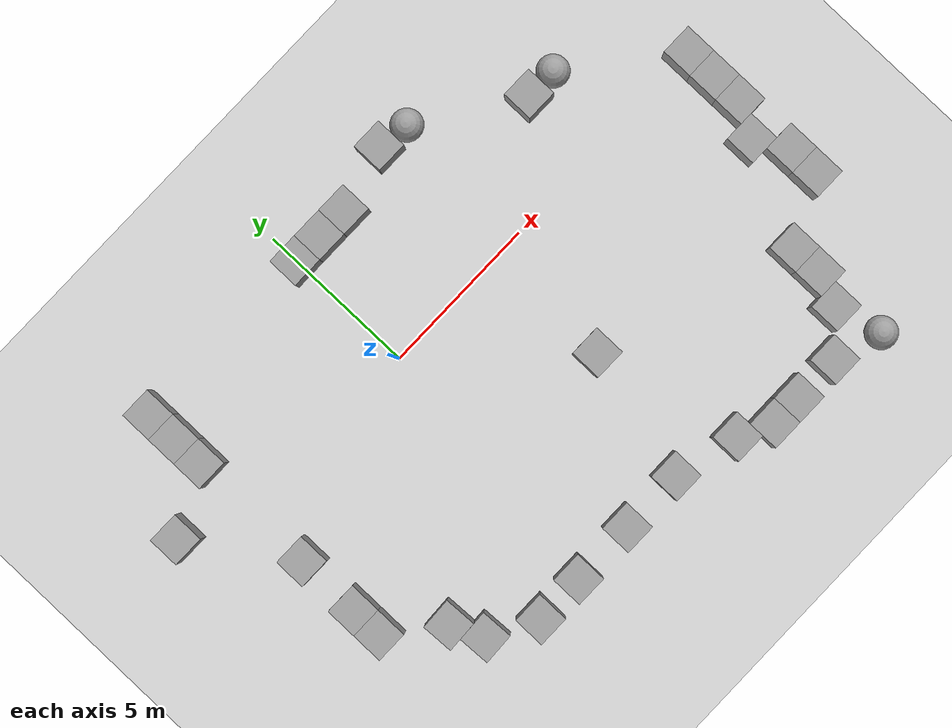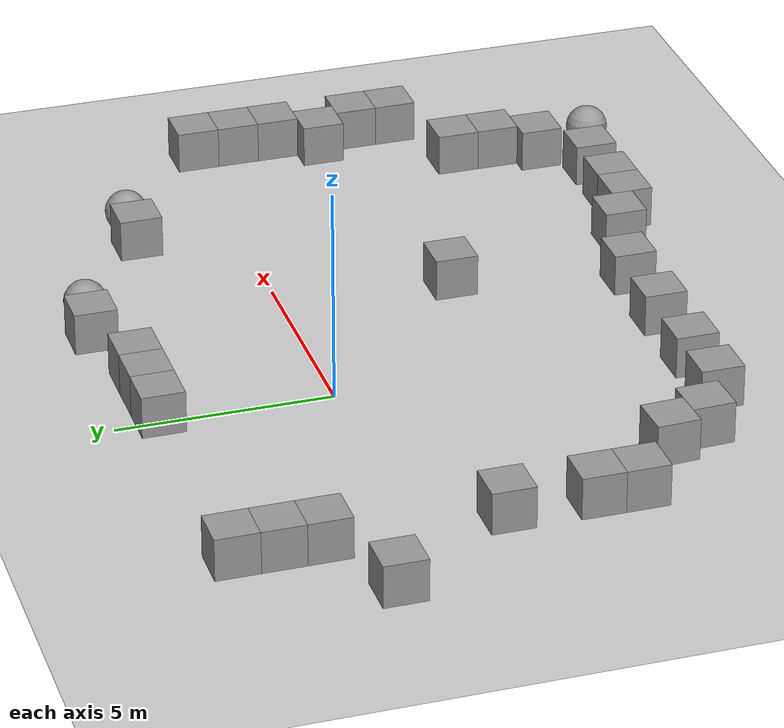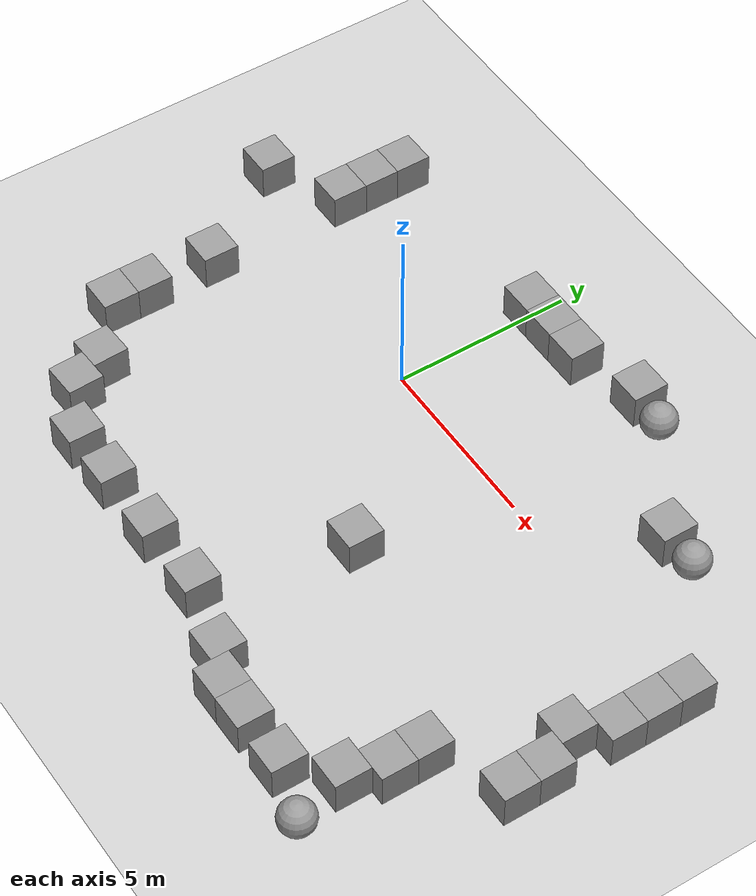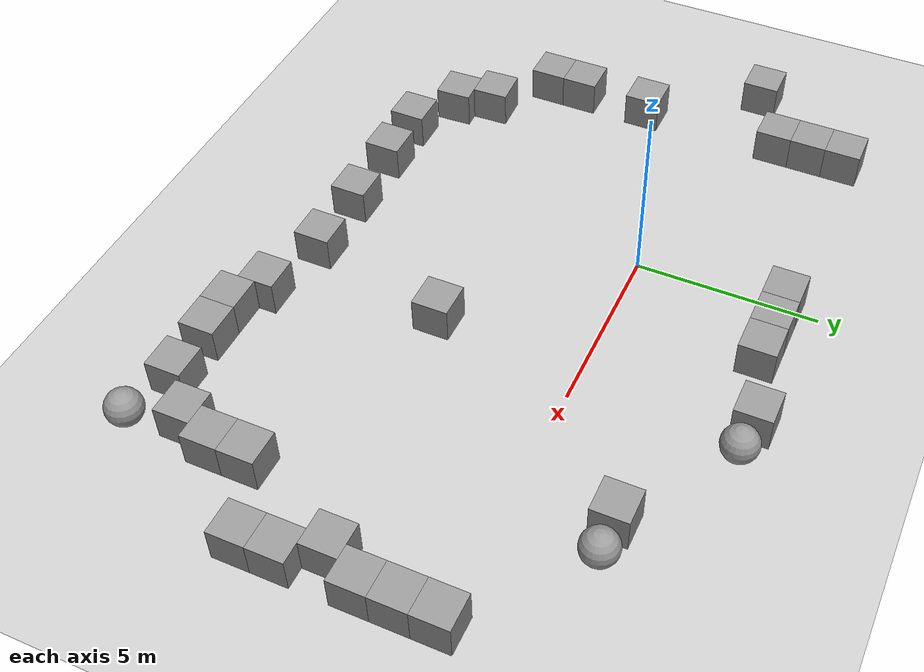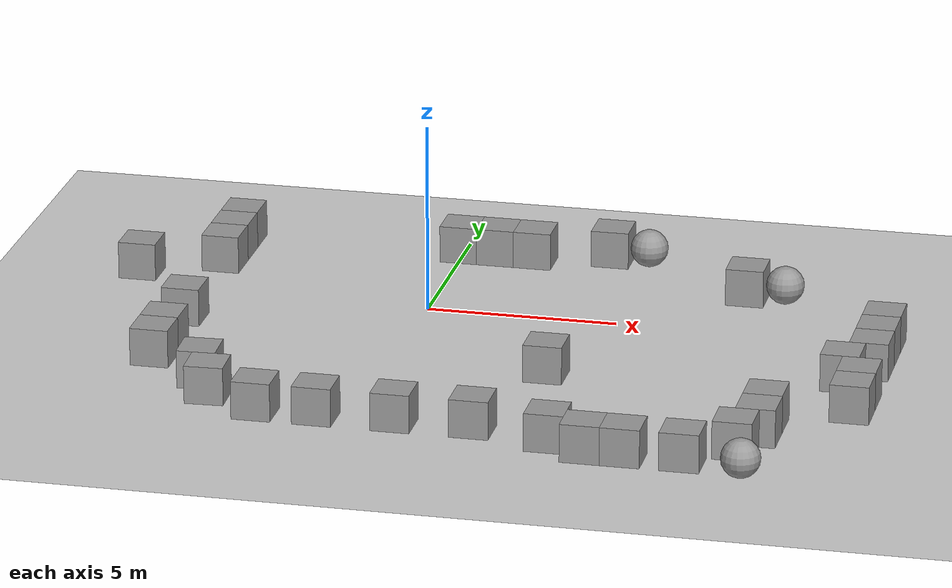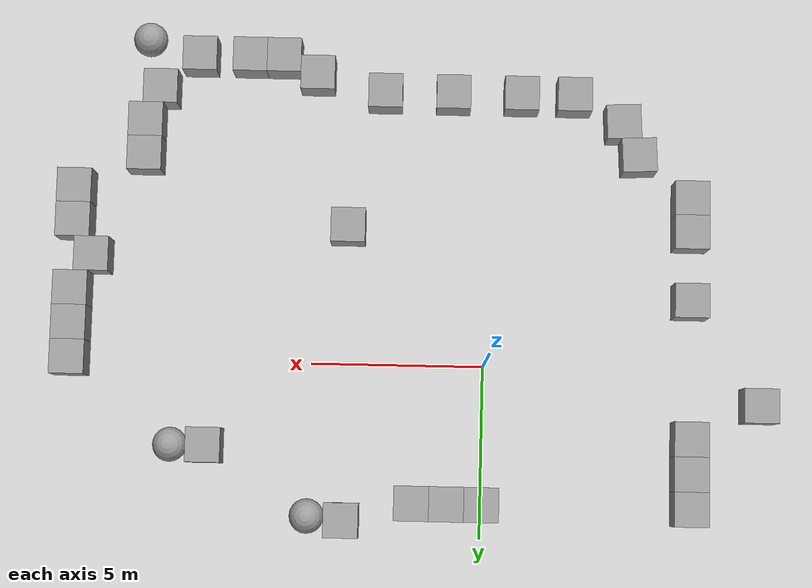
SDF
<sdf version="1.4">
 <world name="default">
  <model name="ground_plane">
   <static>1</static>
   <link name="link">
    <collision name="collision">
     <geometry><plane><normal>0 0 1</normal><size>100 100</size></plane></geometry>
     <surface><friction><ode><mu>100</mu><mu2>50</mu2></ode></friction></surface>
    </collision>
    <visual name="visual">
     <cast_shadows>0</cast_shadows>
     <geometry><plane><normal>0 0 1</normal><size>100 100</size></plane></geometry>
     <material>
      <script><uri>file://media/materials/scripts/gazebo.material</uri><name>Gazebo/Grey</name></script>
     </material>
    </visual>
    <velocity_decay><linear>0</linear><angular>0</angular></velocity_decay>
   </link>
  </model>
  <model name="unit_box_1">
   <pose>4 4.52158 0.5 0 -0 0</pose>
   <link name="link">
    <inertial>
     <mass>1</mass>
     <inertia><ixx>1</ixx><ixy>0</ixy><ixz>0</ixz><iyy>1</iyy><iyz>0</iyz><izz>1</izz></inertia>
    </inertial>
    <collision name="collision"><geometry><box><size>1 1 1</size></box></geometry></collision>
    <visual name="visual">
     <geometry><box><size>1 1 1</size></box></geometry>
     <material>
      <script><uri>file://media/materials/scripts/gazebo.material</uri><name>Gazebo/Grey</name></script>
     </material>
    </visual>
    <velocity_decay><linear>0</linear><angular>0</angular></velocity_decay>
   </link>
   <static>0</static>
  </model>
  <model name="unit_box_2">
   <pose>10 -6 0.5 0 -0 -1e-06</pose>
   <link name="link">
    <inertial>
     <mass>1</mass>
     <inertia><ixx>1</ixx><ixy>0</ixy><ixz>0</ixz><iyy>1</iyy><iyz>0</iyz><izz>1</izz></inertia>
    </inertial>
    <collision name="collision"><geometry><box><size>1 1 1</size></box></geometry></collision>
    <visual name="visual">
     <geometry><box><size>1 1 1</size></box></geometry>
     <material>
      <script><uri>file://media/materials/scripts/gazebo.material</uri><name>Gazebo/Grey</name></script>
     </material>
    </visual>
    <velocity_decay><linear>0</linear><angular>0</angular></velocity_decay>
   </link>
   <static>0</static>
  </model>
  <model name="unit_box_3">
   <pose>1 -8 0.5 0 -0 0</pose>
   <link name="link">
    <inertial>
     <mass>1</mass>
     <inertia><ixx>1</ixx><ixy>0</ixy><ixz>0</ixz><iyy>1</iyy><iyz>0</iyz><izz>1</izz></inertia>
    </inertial>
    <collision name="collision"><geometry><box><size>1 1 1</size></box></geometry></collision>
    <visual name="visual">
     <geometry><box><size>1 1 1</size></box></geometry>
     <material>
      <script><uri>file://media/materials/scripts/gazebo.material</uri><name>Gazebo/Grey</name></script>
     </material>
    </visual>
    <velocity_decay><linear>0</linear><angular>0</angular></velocity_decay>
   </link>
   <static>0</static>
  </model>
  <model name="unit_box_4">
   <pose>-6 4 0.5 -0 -0 -3e-06</pose>
   <link name="link">
    <inertial>
     <mass>1</mass>
     <inertia><ixx>1</ixx><ixy>0</ixy><ixz>0</ixz><iyy>1</iyy><iyz>0</iyz><izz>1</izz></inertia>
    </inertial>
    <collision name="collision"><geometry><box><size>1 1 1</size></box></geometry></collision>
    <visual name="visual">
     <geometry><box><size>1 1 1</size></box></geometry>
     <material>
      <script><uri>file://media/materials/scripts/gazebo.material</uri><name>Gazebo/Grey</name></script>
     </material>
    </visual>
    <velocity_decay><linear>0</linear><angular>0</angular></velocity_decay>
   </link>
   <static>0</static>
  </model>
  <model name="unit_box_5">
   <pose>-6 3 0.5 0 -0 -3e-06</pose>
   <link name="link">
    <inertial>
     <mass>1</mass>
     <inertia><ixx>1</ixx><ixy>0</ixy><ixz>0</ixz><iyy>1</iyy><iyz>0</iyz><izz>1</izz></inertia>
    </inertial>
    <collision name="collision"><geometry><box><size>1 1 1</size></box></geometry></collision>
    <visual name="visual">
     <geometry><box><size>1 1 1</size></box></geometry>
     <material>
      <script><uri>file://media/materials/scripts/gazebo.material</uri><name>Gazebo/Grey</name></script>
     </material>
    </visual>
    <velocity_decay><linear>0</linear><angular>0</angular></velocity_decay>
   </link>
   <static>0</static>
  </model>
  <model name="unit_box_6">
   <pose>-6 2 0.5 0 -0 -3e-06</pose>
   <link name="link">
    <inertial>
     <mass>1</mass>
     <inertia><ixx>1</ixx><ixy>0</ixy><ixz>0</ixz><iyy>1</iyy><iyz>0</iyz><izz>1</izz></inertia>
    </inertial>
    <collision name="collision"><geometry><box><size>1 1 1</size></box></geometry></collision>
    <visual name="visual">
     <geometry><box><size>1 1 1</size></box></geometry>
     <material>
      <script><uri>file://media/materials/scripts/gazebo.material</uri><name>Gazebo/Grey</name></script>
     </material>
    </visual>
    <velocity_decay><linear>0</linear><angular>0</angular></velocity_decay>
   </link>
   <static>0</static>
  </model>
  <model name="unit_sphere_1">
   <pose>5 4.42068 0.5 0 -0 0</pose>
   <link name="link">
    <inertial>
     <mass>1</mass>
     <inertia><ixx>1</ixx><ixy>0</ixy><ixz>0</ixz><iyy>1</iyy><iyz>0</iyz><izz>1</izz></inertia>
    </inertial>
    <collision name="collision"><geometry><sphere><radius>0.5</radius></sphere></geometry></collision>
    <visual name="visual">
     <geometry><sphere><radius>0.5</radius></sphere></geometry>
     <material>
      <script><uri>file://media/materials/scripts/gazebo.material</uri><name>Gazebo/Grey</name></script>
     </material>
    </visual>
    <velocity_decay><linear>0</linear><angular>0</angular></velocity_decay>
   </link>
   <static>0</static>
  </model>
  <model name="unit_box_7">
   <pose>8 2.45319 0.5 0 -0 0</pose>
   <link name="link">
    <inertial>
     <mass>1</mass>
     <inertia><ixx>1</ixx><ixy>0</ixy><ixz>0</ixz><iyy>1</iyy><iyz>0</iyz><izz>1</izz></inertia>
    </inertial>
    <collision name="collision"><geometry><box><size>1 1 1</size></box></geometry></collision>
    <visual name="visual">
     <geometry><box><size>1 1 1</size></box></geometry>
     <material>
      <script><uri>file://media/materials/scripts/gazebo.material</uri><name>Gazebo/Grey</name></script>
     </material>
    </visual>
    <velocity_decay><linear>0</linear><angular>0</angular></velocity_decay>
   </link>
   <static>0</static>
  </model>
  <model name="unit_box_8">
   <pose>3 -8 0.5 0 -0 0</pose>
   <link name="link">
    <inertial>
     <mass>1</mass>
     <inertia><ixx>1</ixx><ixy>0</ixy><ixz>0</ixz><iyy>1</iyy><iyz>0</iyz><izz>1</izz></inertia>
    </inertial>
    <collision name="collision"><geometry><box><size>1 1 1</size></box></geometry></collision>
    <visual name="visual">
     <geometry><box><size>1 1 1</size></box></geometry>
     <material>
      <script><uri>file://media/materials/scripts/gazebo.material</uri><name>Gazebo/Grey</name></script>
     </material>
    </visual>
    <velocity_decay><linear>0</linear><angular>0</angular></velocity_decay>
   </link>
   <static>0</static>
  </model>
  <model name="unit_box_9">
   <pose>-6 -5 0.5 0 -0 0</pose>
   <link name="link">
    <inertial>
     <mass>1</mass>
     <inertia><ixx>1</ixx><ixy>0</ixy><ixz>0</ixz><iyy>1</iyy><iyz>0</iyz><izz>1</izz></inertia>
    </inertial>
    <collision name="collision"><geometry><box><size>1 1 1</size></box></geometry></collision>
    <visual name="visual">
     <geometry><box><size>1 1 1</size></box></geometry>
     <material>
      <script><uri>file://media/materials/scripts/gazebo.material</uri><name>Gazebo/Grey</name></script>
     </material>
    </visual>
    <velocity_decay><linear>0</linear><angular>0</angular></velocity_decay>
   </link>
   <static>0</static>
  </model>
  <model name="unit_box_10">
   <pose>-6 -2 0.5 0 -0 0</pose>
   <link name="link">
    <inertial>
     <mass>1</mass>
     <inertia><ixx>1</ixx><ixy>0</ixy><ixz>0</ixz><iyy>1</iyy><iyz>0</iyz><izz>1</izz></inertia>
    </inertial>
    <collision name="collision"><geometry><box><size>1 1 1</size></box></geometry></collision>
    <visual name="visual">
     <geometry><box><size>1 1 1</size></box></geometry>
     <material>
      <script><uri>file://media/materials/scripts/gazebo.material</uri><name>Gazebo/Grey</name></script>
     </material>
    </visual>
    <velocity_decay><linear>0</linear><angular>0</angular></velocity_decay>
   </link>
   <static>0</static>
  </model>
  <model name="unit_sphere_2">
   <pose>10 -9.47368 0.5 0 -0 0</pose>
   <link name="link">
    <inertial>
     <mass>1</mass>
     <inertia><ixx>1</ixx><ixy>0</ixy><ixz>0</ixz><iyy>1</iyy><iyz>0</iyz><izz>1</izz></inertia>
    </inertial>
    <collision name="collision"><geometry><sphere><radius>0.5</radius></sphere></geometry></collision>
    <visual name="visual">
     <geometry><sphere><radius>0.5</radius></sphere></geometry>
     <material>
      <script><uri>file://media/materials/scripts/gazebo.material</uri><name>Gazebo/Grey</name></script>
     </material>
    </visual>
    <velocity_decay><linear>0</linear><angular>0</angular></velocity_decay>
   </link>
   <static>0</static>
  </model>
  <model name="unit_box_11">
   <pose>11.4237 -3 0.5 0 0 -1e-06</pose>
   <link name="link">
    <inertial>
     <mass>1</mass>
     <inertia><ixx>1</ixx><ixy>0</ixy><ixz>0</ixz><iyy>1</iyy><iyz>0</iyz><izz>1</izz></inertia>
    </inertial>
    <collision name="collision"><geometry><box><size>1 1 1</size></box></geometry></collision>
    <visual name="visual">
     <geometry><box><size>1 1 1</size></box></geometry>
     <material>
      <script><uri>file://media/materials/scripts/gazebo.material</uri><name>Gazebo/Grey</name></script>
     </material>
    </visual>
    <velocity_decay><linear>0</linear><angular>0</angular></velocity_decay>
   </link>
   <static>0</static>
  </model>
  <model name="unit_box_12">
   <pose>4 -4 0.5 0 -0 -1e-06</pose>
   <link name="link">
    <inertial>
     <mass>1</mass>
     <inertia><ixx>1</ixx><ixy>0</ixy><ixz>0</ixz><iyy>1</iyy><iyz>0</iyz><izz>1</izz></inertia>
    </inertial>
    <collision name="collision"><geometry><box><size>1 1 1</size></box></geometry></collision>
    <visual name="visual">
     <geometry><box><size>1 1 1</size></box></geometry>
     <material>
      <script><uri>file://media/materials/scripts/gazebo.material</uri><name>Gazebo/Grey</name></script>
     </material>
    </visual>
    <velocity_decay><linear>0</linear><angular>0</angular></velocity_decay>
   </link>
   <static>0</static>
  </model>
  <model name="unit_box_13">
   <pose>12 -5 0.5 0 -0 1e-05</pose>
   <link name="link">
    <inertial>
     <mass>1</mass>
     <inertia><ixx>1</ixx><ixy>0</ixy><ixz>0</ixz><iyy>1</iyy><iyz>0</iyz><izz>1</izz></inertia>
    </inertial>
    <collision name="collision"><geometry><box><size>1 1 1</size></box></geometry></collision>
    <visual name="visual">
     <geometry><box><size>1 1 1</size></box></geometry>
     <material>
      <script><uri>file://media/materials/scripts/gazebo.material</uri><name>Gazebo/Grey</name></script>
     </material>
    </visual>
    <velocity_decay><linear>0</linear><angular>0</angular></velocity_decay>
   </link>
   <static>0</static>
  </model>
  <model name="unit_box_14">
   <pose>12 -0.999997 0.5 0 -0 -9e-06</pose>
   <link name="link">
    <inertial>
     <mass>1</mass>
     <inertia><ixx>1</ixx><ixy>0</ixy><ixz>0</ixz><iyy>1</iyy><iyz>0</iyz><izz>1</izz></inertia>
    </inertial>
    <collision name="collision"><geometry><box><size>1 1 1</size></box></geometry></collision>
    <visual name="visual">
     <geometry><box><size>1 1 1</size></box></geometry>
     <material>
      <script><uri>file://media/materials/scripts/gazebo.material</uri><name>Gazebo/Grey</name></script>
     </material>
    </visual>
    <velocity_decay><linear>0</linear><angular>0</angular></velocity_decay>
   </link>
   <static>0</static>
  </model>
  <model name="unit_box_15">
   <pose>-2e-06 4 0.5 0 -0 3e-06</pose>
   <link name="link">
    <inertial>
     <mass>1</mass>
     <inertia><ixx>1</ixx><ixy>0</ixy><ixz>0</ixz><iyy>1</iyy><iyz>0</iyz><izz>1</izz></inertia>
    </inertial>
    <collision name="collision"><geometry><box><size>1 1 1</size></box></geometry></collision>
    <visual name="visual">
     <geometry><box><size>1 1 1</size></box></geometry>
     <material>
      <script><uri>file://media/materials/scripts/gazebo.material</uri><name>Gazebo/Grey</name></script>
     </material>
    </visual>
    <velocity_decay><linear>0</linear><angular>0</angular></velocity_decay>
   </link>
   <static>0</static>
  </model>
  <model name="unit_box_16">
   <pose>0.999999 4 0.5 0 -0 1e-06</pose>
   <link name="link">
    <inertial>
     <mass>1</mass>
     <inertia><ixx>1</ixx><ixy>0</ixy><ixz>0</ixz><iyy>1</iyy><iyz>0</iyz><izz>1</izz></inertia>
    </inertial>
    <collision name="collision"><geometry><box><size>1 1 1</size></box></geometry></collision>
    <visual name="visual">
     <geometry><box><size>1 1 1</size></box></geometry>
     <material>
      <script><uri>file://media/materials/scripts/gazebo.material</uri><name>Gazebo/Grey</name></script>
     </material>
    </visual>
    <velocity_decay><linear>0</linear><angular>0</angular></velocity_decay>
   </link>
   <static>0</static>
  </model>
  <model name="unit_box_17">
   <pose>2 4 0.5 0 -0 3e-06</pose>
   <link name="link">
    <inertial>
     <mass>1</mass>
     <inertia><ixx>1</ixx><ixy>0</ixy><ixz>0</ixz><iyy>1</iyy><iyz>0</iyz><izz>1</izz></inertia>
    </inertial>
    <collision name="collision"><geometry><box><size>1 1 1</size></box></geometry></collision>
    <visual name="visual">
     <geometry><box><size>1 1 1</size></box></geometry>
     <material>
      <script><uri>file://media/materials/scripts/gazebo.material</uri><name>Gazebo/Grey</name></script>
     </material>
    </visual>
    <velocity_decay><linear>0</linear><angular>0</angular></velocity_decay>
   </link>
   <static>0</static>
  </model>
  <model name="unit_box_18">
   <pose>5 -8.50001 0.5 0 -0 0</pose>
   <link name="link">
    <inertial>
     <mass>1</mass>
     <inertia><ixx>1</ixx><ixy>0</ixy><ixz>0</ixz><iyy>1</iyy><iyz>0</iyz><izz>1</izz></inertia>
    </inertial>
    <collision name="collision"><geometry><box><size>1 1 1</size></box></geometry></collision>
    <visual name="visual">
     <geometry><box><size>1 1 1</size></box></geometry>
     <material>
      <script><uri>file://media/materials/scripts/gazebo.material</uri><name>Gazebo/Grey</name></script>
     </material>
    </visual>
    <velocity_decay><linear>0</linear><angular>0</angular></velocity_decay>
   </link>
   <static>0</static>
  </model>
  <model name="unit_box_19">
   <pose>-4.44825 -6.23455 0.5 0 -0 0.043687</pose>
   <link name="link">
    <inertial>
     <mass>1</mass>
     <inertia><ixx>1</ixx><ixy>0</ixy><ixz>0</ixz><iyy>1</iyy><iyz>0</iyz><izz>1</izz></inertia>
    </inertial>
    <collision name="collision"><geometry><box><size>1 1 1</size></box></geometry></collision>
    <visual name="visual">
     <geometry><box><size>1 1 1</size></box></geometry>
     <material>
      <script><uri>file://media/materials/scripts/gazebo.material</uri><name>Gazebo/Grey</name></script>
     </material>
    </visual>
    <velocity_decay><linear>0</linear><angular>0</angular></velocity_decay>
   </link>
   <static>0</static>
  </model>
  <model name="unit_box_1_0">
   <pose>6 -9 0.5 0 -0 0</pose>
   <link name="link">
    <inertial>
     <mass>1</mass>
     <inertia><ixx>1</ixx><ixy>0</ixy><ixz>0</ixz><iyy>1</iyy><iyz>0</iyz><izz>1</izz></inertia>
    </inertial>
    <collision name="collision"><geometry><box><size>1 1 1</size></box></geometry></collision>
    <visual name="visual">
     <geometry><box><size>1 1 1</size></box></geometry>
     <material>
      <script><uri>file://media/materials/scripts/gazebo.material</uri><name>Gazebo/Grey</name></script>
     </material>
    </visual>
    <velocity_decay><linear>0</linear><angular>0</angular></velocity_decay>
   </link>
   <static>0</static>
  </model>
  <model name="unit_box_2_0">
   <pose>7 -9 0.5 0 -0 0</pose>
   <link name="link">
    <inertial>
     <mass>1</mass>
     <inertia><ixx>1</ixx><ixy>0</ixy><ixz>0</ixz><iyy>1</iyy><iyz>0</iyz><izz>1</izz></inertia>
    </inertial>
    <collision name="collision"><geometry><box><size>1 1 1</size></box></geometry></collision>
    <visual name="visual">
     <geometry><box><size>1 1 1</size></box></geometry>
     <material>
      <script><uri>file://media/materials/scripts/gazebo.material</uri><name>Gazebo/Grey</name></script>
     </material>
    </visual>
    <velocity_decay><linear>0</linear><angular>0</angular></velocity_decay>
   </link>
   <static>0</static>
  </model>
  <model name="unit_box_3_0">
   <pose>8.47504 -9 0.5 0 -0 0</pose>
   <link name="link">
    <inertial>
     <mass>1</mass>
     <inertia><ixx>1</ixx><ixy>0</ixy><ixz>0</ixz><iyy>1</iyy><iyz>0</iyz><izz>1</izz></inertia>
    </inertial>
    <collision name="collision"><geometry><box><size>1 1 1</size></box></geometry></collision>
    <visual name="visual">
     <geometry><box><size>1 1 1</size></box></geometry>
     <material>
      <script><uri>file://media/materials/scripts/gazebo.material</uri><name>Gazebo/Grey</name></script>
     </material>
    </visual>
    <velocity_decay><linear>0</linear><angular>0</angular></velocity_decay>
   </link>
   <static>0</static>
  </model>
  <model name="unit_box_4_0">
   <pose>9.59951 -8 0.5 0 0 -2e-06</pose>
   <link name="link">
    <inertial>
     <mass>1</mass>
     <inertia><ixx>1</ixx><ixy>0</ixy><ixz>0</ixz><iyy>1</iyy><iyz>0</iyz><izz>1</izz></inertia>
    </inertial>
    <collision name="collision"><geometry><box><size>1 1 1</size></box></geometry></collision>
    <visual name="visual">
     <geometry><box><size>1 1 1</size></box></geometry>
     <material>
      <script><uri>file://media/materials/scripts/gazebo.material</uri><name>Gazebo/Grey</name></script>
     </material>
    </visual>
    <velocity_decay><linear>0</linear><angular>0</angular></velocity_decay>
   </link>
   <static>0</static>
  </model>
  <model name="unit_box_5_0">
   <pose>10 -7 0.5 0 0 -2e-06</pose>
   <link name="link">
    <inertial>
     <mass>1</mass>
     <inertia><ixx>1</ixx><ixy>0</ixy><ixz>0</ixz><iyy>1</iyy><iyz>0</iyz><izz>1</izz></inertia>
    </inertial>
    <collision name="collision"><geometry><box><size>1 1 1</size></box></geometry></collision>
    <visual name="visual">
     <geometry><box><size>1 1 1</size></box></geometry>
     <material>
      <script><uri>file://media/materials/scripts/gazebo.material</uri><name>Gazebo/Grey</name></script>
     </material>
    </visual>
    <velocity_decay><linear>0</linear><angular>0</angular></velocity_decay>
   </link>
   <static>0</static>
  </model>
  <model name="unit_box_6_0">
   <pose>12 -4 0.5 0 -0 1e-05</pose>
   <link name="link">
    <inertial>
     <mass>1</mass>
     <inertia><ixx>1</ixx><ixy>0</ixy><ixz>0</ixz><iyy>1</iyy><iyz>0</iyz><izz>1</izz></inertia>
    </inertial>
    <collision name="collision"><geometry><box><size>1 1 1</size></box></geometry></collision>
    <visual name="visual">
     <geometry><box><size>1 1 1</size></box></geometry>
     <material>
      <script><uri>file://media/materials/scripts/gazebo.material</uri><name>Gazebo/Grey</name></script>
     </material>
    </visual>
    <velocity_decay><linear>0</linear><angular>0</angular></velocity_decay>
   </link>
   <static>0</static>
  </model>
  <model name="unit_box_7_0">
   <pose>12 -2 0.5 0 0 -1.2e-05</pose>
   <link name="link">
    <inertial>
     <mass>1</mass>
     <inertia><ixx>1</ixx><ixy>0</ixy><ixz>0</ixz><iyy>1</iyy><iyz>0</iyz><izz>1</izz></inertia>
    </inertial>
    <collision name="collision"><geometry><box><size>1 1 1</size></box></geometry></collision>
    <visual name="visual">
     <geometry><box><size>1 1 1</size></box></geometry>
     <material>
      <script><uri>file://media/materials/scripts/gazebo.material</uri><name>Gazebo/Grey</name></script>
     </material>
    </visual>
    <velocity_decay><linear>0</linear><angular>0</angular></velocity_decay>
   </link>
   <static>0</static>
  </model>
  <model name="unit_box_8_0">
   <pose>-8 1 0.5 0 -0 0</pose>
   <link name="link">
    <inertial>
     <mass>1</mass>
     <inertia><ixx>1</ixx><ixy>0</ixy><ixz>0</ixz><iyy>1</iyy><iyz>0</iyz><izz>1</izz></inertia>
    </inertial>
    <collision name="collision"><geometry><box><size>1 1 1</size></box></geometry></collision>
    <visual name="visual">
     <geometry><box><size>1 1 1</size></box></geometry>
     <material>
      <script><uri>file://media/materials/scripts/gazebo.material</uri><name>Gazebo/Grey</name></script>
     </material>
    </visual>
    <velocity_decay><linear>0</linear><angular>0</angular></velocity_decay>
   </link>
   <static>0</static>
  </model>
  <model name="unit_box_9_0">
   <pose>-6 -4 0.5 0 -0 0</pose>
   <link name="link">
    <inertial>
     <mass>1</mass>
     <inertia><ixx>1</ixx><ixy>0</ixy><ixz>0</ixz><iyy>1</iyy><iyz>0</iyz><izz>1</izz></inertia>
    </inertial>
    <collision name="collision"><geometry><box><size>1 1 1</size></box></geometry></collision>
    <visual name="visual">
     <geometry><box><size>1 1 1</size></box></geometry>
     <material>
      <script><uri>file://media/materials/scripts/gazebo.material</uri><name>Gazebo/Grey</name></script>
     </material>
    </visual>
    <velocity_decay><linear>0</linear><angular>0</angular></velocity_decay>
   </link>
   <static>0</static>
  </model>
  <model name="unit_box_10_0">
   <pose>12 4e-06 0.5 0 -0 -9e-06</pose>
   <link name="link">
    <inertial>
     <mass>1</mass>
     <inertia><ixx>1</ixx><ixy>0</ixy><ixz>0</ixz><iyy>1</iyy><iyz>0</iyz><izz>1</izz></inertia>
    </inertial>
    <collision name="collision"><geometry><box><size>1 1 1</size></box></geometry></collision>
    <visual name="visual">
     <geometry><box><size>1 1 1</size></box></geometry>
     <material>
      <script><uri>file://media/materials/scripts/gazebo.material</uri><name>Gazebo/Grey</name></script>
     </material>
    </visual>
    <velocity_decay><linear>0</linear><angular>0</angular></velocity_decay>
   </link>
   <static>0</static>
  </model>
  <model name="unit_sphere_1_0">
   <pose>9 2.45364 0.5 0 -0 0</pose>
   <link name="link">
    <inertial>
     <mass>1</mass>
     <inertia><ixx>1</ixx><ixy>0</ixy><ixz>0</ixz><iyy>1</iyy><iyz>0</iyz><izz>1</izz></inertia>
    </inertial>
    <collision name="collision"><geometry><sphere><radius>0.5</radius></sphere></geometry></collision>
    <visual name="visual">
     <geometry><sphere><radius>0.5</radius></sphere></geometry>
     <material>
      <script><uri>file://media/materials/scripts/gazebo.material</uri><name>Gazebo/Grey</name></script>
     </material>
    </visual>
    <velocity_decay><linear>0</linear><angular>0</angular></velocity_decay>
   </link>
   <static>0</static>
  </model>
  <model name="unit_box_13_0">
   <pose>-1 -8 0.5 0 -0 0</pose>
   <link name="link">
    <inertial>
     <mass>1</mass>
     <inertia><ixx>1</ixx><ixy>0</ixy><ixz>0</ixz><iyy>1</iyy><iyz>0</iyz><izz>1</izz></inertia>
    </inertial>
    <collision name="collision"><geometry><box><size>1 1 1</size></box></geometry></collision>
    <visual name="visual">
     <geometry><box><size>1 1 1</size></box></geometry>
     <material>
      <script><uri>file://media/materials/scripts/gazebo.material</uri><name>Gazebo/Grey</name></script>
     </material>
    </visual>
    <velocity_decay><linear>0</linear><angular>0</angular></velocity_decay>
   </link>
   <static>0</static>
  </model>
  <model name="unit_box_14_0">
   <pose>-2.55224 -8 0.5 0 -0 0</pose>
   <link name="link">
    <inertial>
     <mass>1</mass>
     <inertia><ixx>1</ixx><ixy>0</ixy><ixz>0</ixz><iyy>1</iyy><iyz>0</iyz><izz>1</izz></inertia>
    </inertial>
    <collision name="collision"><geometry><box><size>1 1 1</size></box></geometry></collision>
    <visual name="visual">
     <geometry><box><size>1 1 1</size></box></geometry>
     <material>
      <script><uri>file://media/materials/scripts/gazebo.material</uri><name>Gazebo/Grey</name></script>
     </material>
    </visual>
    <velocity_decay><linear>0</linear><angular>0</angular></velocity_decay>
   </link>
   <static>0</static>
  </model>
  <model name="unit_box_15_0">
   <pose>-3.98798 -7.21549 0.5 0 -0 0.04369</pose>
   <link name="link">
    <inertial>
     <mass>1</mass>
     <inertia><ixx>1</ixx><ixy>0</ixy><ixz>0</ixz><iyy>1</iyy><iyz>0</iyz><izz>1</izz></inertia>
    </inertial>
    <collision name="collision"><geometry><box><size>1 1 1</size></box></geometry></collision>
    <visual name="visual">
     <geometry><box><size>1 1 1</size></box></geometry>
     <material>
      <script><uri>file://media/materials/scripts/gazebo.material</uri><name>Gazebo/Grey</name></script>
     </material>
    </visual>
    <velocity_decay><linear>0</linear><angular>0</angular></velocity_decay>
   </link>
   <static>0</static>
  </model>
 </world>
</sdf>
